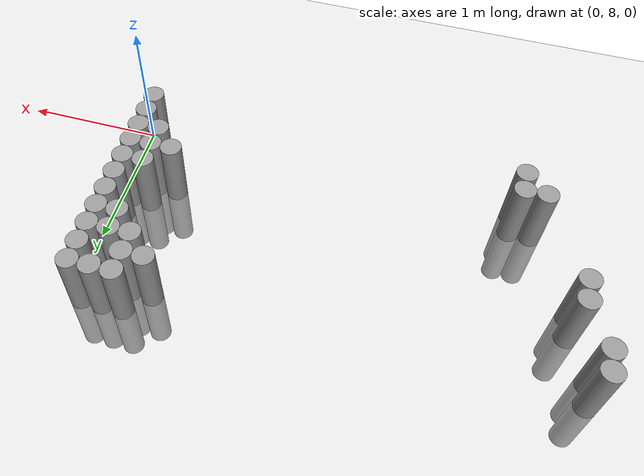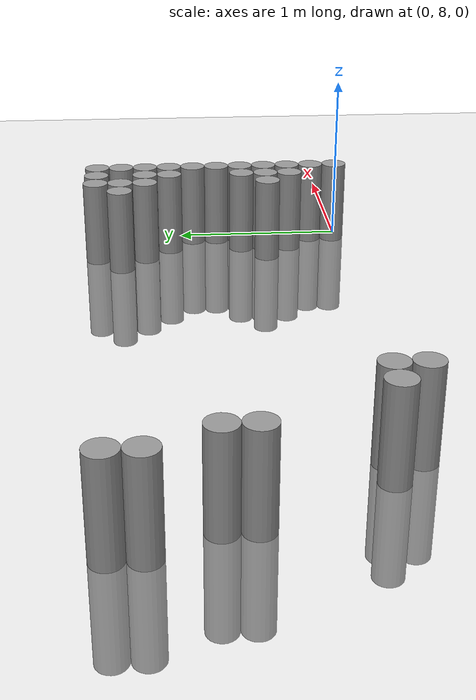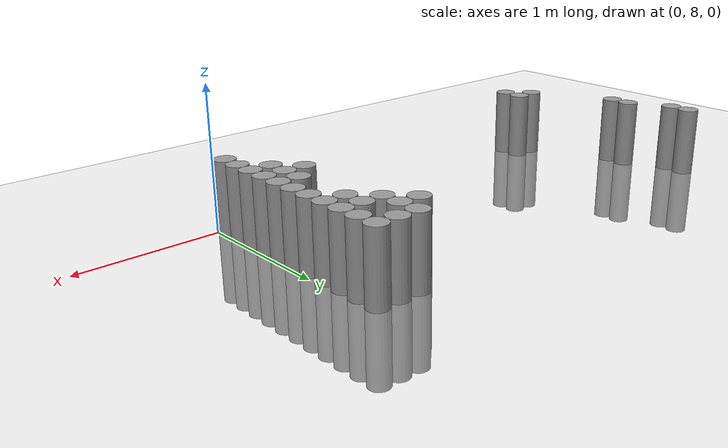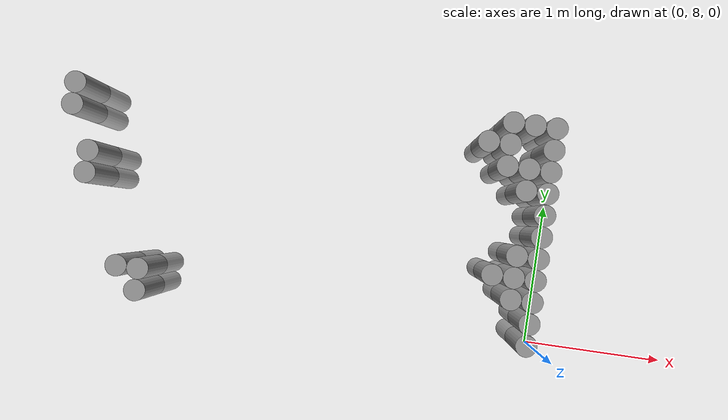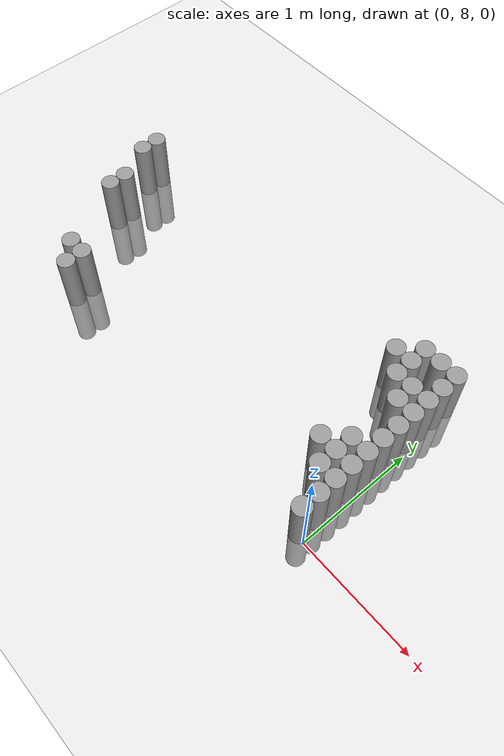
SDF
<sdf version="1.6">
 <world name="default">
  <model name="ground_plane">
   <static>1</static>
   <static>1</static>
   <link name="link">
    <collision name="collision">
     <geometry><plane><normal>0 0 1</normal><size>100 100</size></plane></geometry>
     <surface><friction><ode><mu>100</mu><mu2>50</mu2></ode></friction></surface>
    </collision>
    <visual name="visual">
     <cast_shadows>0</cast_shadows>
     <geometry><plane><normal>0 0 1</normal><size>100 100</size></plane></geometry>
     <material>
      <script><uri>file://media/materials/scripts/gazebo.material</uri><name>Gazebo/Grey</name></script>
     </material>
    </visual>
   </link>
  </model>
  <model name="unit_cylinder_164">
   <static>1</static>
   <pose>-3.375000 9.225000 0.000000 0.000000 0.000000 0.000000</pose>
   <link name="link">
    <inertial>
     <mass>1</mass>
     <inertia><ixx>0.145833</ixx><ixy>0</ixy><ixz>0</ixz><iyy>0.145833</iyy><iyz>0</iyz><izz>0.125</izz></inertia>
    </inertial>
    <collision name="collision">
     <geometry><cylinder><radius>0.075000</radius><length>1</length></cylinder></geometry>
    </collision>
    <visual name="visual">
     <geometry><cylinder><radius>0.075000</radius><length>1</length></cylinder></geometry>
     <material>
      <script><name>Gazebo/Grey</name><uri>file://media/materials/scripts/gazebo.material</uri></script>
     </material>
    </visual>
   </link>
  </model>
  <model name="unit_cylinder_165">
   <static>1</static>
   <pose>-3.375000 9.375000 0.000000 0.000000 0.000000 0.000000</pose>
   <link name="link">
    <inertial>
     <mass>1</mass>
     <inertia><ixx>0.145833</ixx><ixy>0</ixy><ixz>0</ixz><iyy>0.145833</iyy><iyz>0</iyz><izz>0.125</izz></inertia>
    </inertial>
    <collision name="collision">
     <geometry><cylinder><radius>0.075000</radius><length>1</length></cylinder></geometry>
    </collision>
    <visual name="visual">
     <geometry><cylinder><radius>0.075000</radius><length>1</length></cylinder></geometry>
     <material>
      <script><name>Gazebo/Grey</name><uri>file://media/materials/scripts/gazebo.material</uri></script>
     </material>
    </visual>
   </link>
  </model>
  <model name="unit_cylinder_168">
   <static>1</static>
   <pose>-3.225000 8.775000 0.000000 0.000000 0.000000 0.000000</pose>
   <link name="link">
    <inertial>
     <mass>1</mass>
     <inertia><ixx>0.145833</ixx><ixy>0</ixy><ixz>0</ixz><iyy>0.145833</iyy><iyz>0</iyz><izz>0.125</izz></inertia>
    </inertial>
    <collision name="collision">
     <geometry><cylinder><radius>0.075000</radius><length>1</length></cylinder></geometry>
    </collision>
    <visual name="visual">
     <geometry><cylinder><radius>0.075000</radius><length>1</length></cylinder></geometry>
     <material>
      <script><name>Gazebo/Grey</name><uri>file://media/materials/scripts/gazebo.material</uri></script>
     </material>
    </visual>
   </link>
  </model>
  <model name="unit_cylinder_169">
   <static>1</static>
   <pose>-3.225000 8.925000 0.000000 0.000000 0.000000 0.000000</pose>
   <link name="link">
    <inertial>
     <mass>1</mass>
     <inertia><ixx>0.145833</ixx><ixy>0</ixy><ixz>0</ixz><iyy>0.145833</iyy><iyz>0</iyz><izz>0.125</izz></inertia>
    </inertial>
    <collision name="collision">
     <geometry><cylinder><radius>0.075000</radius><length>1</length></cylinder></geometry>
    </collision>
    <visual name="visual">
     <geometry><cylinder><radius>0.075000</radius><length>1</length></cylinder></geometry>
     <material>
      <script><name>Gazebo/Grey</name><uri>file://media/materials/scripts/gazebo.material</uri></script>
     </material>
    </visual>
   </link>
  </model>
  <model name="unit_cylinder_171">
   <static>1</static>
   <pose>-2.925000 8.175000 0.000000 0.000000 0.000000 0.000000</pose>
   <link name="link">
    <inertial>
     <mass>1</mass>
     <inertia><ixx>0.145833</ixx><ixy>0</ixy><ixz>0</ixz><iyy>0.145833</iyy><iyz>0</iyz><izz>0.125</izz></inertia>
    </inertial>
    <collision name="collision">
     <geometry><cylinder><radius>0.075000</radius><length>1</length></cylinder></geometry>
    </collision>
    <visual name="visual">
     <geometry><cylinder><radius>0.075000</radius><length>1</length></cylinder></geometry>
     <material>
      <script><name>Gazebo/Grey</name><uri>file://media/materials/scripts/gazebo.material</uri></script>
     </material>
    </visual>
   </link>
  </model>
  <model name="unit_cylinder_172">
   <static>1</static>
   <pose>-2.775000 8.025000 0.000000 0.000000 0.000000 0.000000</pose>
   <link name="link">
    <inertial>
     <mass>1</mass>
     <inertia><ixx>0.145833</ixx><ixy>0</ixy><ixz>0</ixz><iyy>0.145833</iyy><iyz>0</iyz><izz>0.125</izz></inertia>
    </inertial>
    <collision name="collision">
     <geometry><cylinder><radius>0.075000</radius><length>1</length></cylinder></geometry>
    </collision>
    <visual name="visual">
     <geometry><cylinder><radius>0.075000</radius><length>1</length></cylinder></geometry>
     <material>
      <script><name>Gazebo/Grey</name><uri>file://media/materials/scripts/gazebo.material</uri></script>
     </material>
    </visual>
   </link>
  </model>
  <model name="unit_cylinder_173">
   <static>1</static>
   <pose>-2.775000 8.175000 0.000000 0.000000 0.000000 0.000000</pose>
   <link name="link">
    <inertial>
     <mass>1</mass>
     <inertia><ixx>0.145833</ixx><ixy>0</ixy><ixz>0</ixz><iyy>0.145833</iyy><iyz>0</iyz><izz>0.125</izz></inertia>
    </inertial>
    <collision name="collision">
     <geometry><cylinder><radius>0.075000</radius><length>1</length></cylinder></geometry>
    </collision>
    <visual name="visual">
     <geometry><cylinder><radius>0.075000</radius><length>1</length></cylinder></geometry>
     <material>
      <script><name>Gazebo/Grey</name><uri>file://media/materials/scripts/gazebo.material</uri></script>
     </material>
    </visual>
   </link>
  </model>
  <model name="unit_cylinder_184">
   <static>1</static>
   <pose>-0.525000 9.375000 0.000000 0.000000 0.000000 0.000000</pose>
   <link name="link">
    <inertial>
     <mass>1</mass>
     <inertia><ixx>0.145833</ixx><ixy>0</ixy><ixz>0</ixz><iyy>0.145833</iyy><iyz>0</iyz><izz>0.125</izz></inertia>
    </inertial>
    <collision name="collision">
     <geometry><cylinder><radius>0.075000</radius><length>1</length></cylinder></geometry>
    </collision>
    <visual name="visual">
     <geometry><cylinder><radius>0.075000</radius><length>1</length></cylinder></geometry>
     <material>
      <script><name>Gazebo/Grey</name><uri>file://media/materials/scripts/gazebo.material</uri></script>
     </material>
    </visual>
   </link>
  </model>
  <model name="unit_cylinder_185">
   <static>1</static>
   <pose>-0.375000 8.475000 0.000000 0.000000 0.000000 0.000000</pose>
   <link name="link">
    <inertial>
     <mass>1</mass>
     <inertia><ixx>0.145833</ixx><ixy>0</ixy><ixz>0</ixz><iyy>0.145833</iyy><iyz>0</iyz><izz>0.125</izz></inertia>
    </inertial>
    <collision name="collision">
     <geometry><cylinder><radius>0.075000</radius><length>1</length></cylinder></geometry>
    </collision>
    <visual name="visual">
     <geometry><cylinder><radius>0.075000</radius><length>1</length></cylinder></geometry>
     <material>
      <script><name>Gazebo/Grey</name><uri>file://media/materials/scripts/gazebo.material</uri></script>
     </material>
    </visual>
   </link>
  </model>
  <model name="unit_cylinder_186">
   <static>1</static>
   <pose>-0.375000 9.225000 0.000000 0.000000 0.000000 0.000000</pose>
   <link name="link">
    <inertial>
     <mass>1</mass>
     <inertia><ixx>0.145833</ixx><ixy>0</ixy><ixz>0</ixz><iyy>0.145833</iyy><iyz>0</iyz><izz>0.125</izz></inertia>
    </inertial>
    <collision name="collision">
     <geometry><cylinder><radius>0.075000</radius><length>1</length></cylinder></geometry>
    </collision>
    <visual name="visual">
     <geometry><cylinder><radius>0.075000</radius><length>1</length></cylinder></geometry>
     <material>
      <script><name>Gazebo/Grey</name><uri>file://media/materials/scripts/gazebo.material</uri></script>
     </material>
    </visual>
   </link>
  </model>
  <model name="unit_cylinder_187">
   <static>1</static>
   <pose>-0.375000 9.375000 0.000000 0.000000 0.000000 0.000000</pose>
   <link name="link">
    <inertial>
     <mass>1</mass>
     <inertia><ixx>0.145833</ixx><ixy>0</ixy><ixz>0</ixz><iyy>0.145833</iyy><iyz>0</iyz><izz>0.125</izz></inertia>
    </inertial>
    <collision name="collision">
     <geometry><cylinder><radius>0.075000</radius><length>1</length></cylinder></geometry>
    </collision>
    <visual name="visual">
     <geometry><cylinder><radius>0.075000</radius><length>1</length></cylinder></geometry>
     <material>
      <script><name>Gazebo/Grey</name><uri>file://media/materials/scripts/gazebo.material</uri></script>
     </material>
    </visual>
   </link>
  </model>
  <model name="unit_cylinder_188">
   <static>1</static>
   <pose>-0.375000 9.525000 0.000000 0.000000 0.000000 0.000000</pose>
   <link name="link">
    <inertial>
     <mass>1</mass>
     <inertia><ixx>0.145833</ixx><ixy>0</ixy><ixz>0</ixz><iyy>0.145833</iyy><iyz>0</iyz><izz>0.125</izz></inertia>
    </inertial>
    <collision name="collision">
     <geometry><cylinder><radius>0.075000</radius><length>1</length></cylinder></geometry>
    </collision>
    <visual name="visual">
     <geometry><cylinder><radius>0.075000</radius><length>1</length></cylinder></geometry>
     <material>
      <script><name>Gazebo/Grey</name><uri>file://media/materials/scripts/gazebo.material</uri></script>
     </material>
    </visual>
   </link>
  </model>
  <model name="unit_cylinder_190">
   <static>1</static>
   <pose>-0.225000 8.325000 0.000000 0.000000 0.000000 0.000000</pose>
   <link name="link">
    <inertial>
     <mass>1</mass>
     <inertia><ixx>0.145833</ixx><ixy>0</ixy><ixz>0</ixz><iyy>0.145833</iyy><iyz>0</iyz><izz>0.125</izz></inertia>
    </inertial>
    <collision name="collision">
     <geometry><cylinder><radius>0.075000</radius><length>1</length></cylinder></geometry>
    </collision>
    <visual name="visual">
     <geometry><cylinder><radius>0.075000</radius><length>1</length></cylinder></geometry>
     <material>
      <script><name>Gazebo/Grey</name><uri>file://media/materials/scripts/gazebo.material</uri></script>
     </material>
    </visual>
   </link>
  </model>
  <model name="unit_cylinder_191">
   <static>1</static>
   <pose>-0.225000 8.475000 0.000000 0.000000 0.000000 0.000000</pose>
   <link name="link">
    <inertial>
     <mass>1</mass>
     <inertia><ixx>0.145833</ixx><ixy>0</ixy><ixz>0</ixz><iyy>0.145833</iyy><iyz>0</iyz><izz>0.125</izz></inertia>
    </inertial>
    <collision name="collision">
     <geometry><cylinder><radius>0.075000</radius><length>1</length></cylinder></geometry>
    </collision>
    <visual name="visual">
     <geometry><cylinder><radius>0.075000</radius><length>1</length></cylinder></geometry>
     <material>
      <script><name>Gazebo/Grey</name><uri>file://media/materials/scripts/gazebo.material</uri></script>
     </material>
    </visual>
   </link>
  </model>
  <model name="unit_cylinder_192">
   <static>1</static>
   <pose>-0.225000 8.625000 0.000000 0.000000 0.000000 0.000000</pose>
   <link name="link">
    <inertial>
     <mass>1</mass>
     <inertia><ixx>0.145833</ixx><ixy>0</ixy><ixz>0</ixz><iyy>0.145833</iyy><iyz>0</iyz><izz>0.125</izz></inertia>
    </inertial>
    <collision name="collision">
     <geometry><cylinder><radius>0.075000</radius><length>1</length></cylinder></geometry>
    </collision>
    <visual name="visual">
     <geometry><cylinder><radius>0.075000</radius><length>1</length></cylinder></geometry>
     <material>
      <script><name>Gazebo/Grey</name><uri>file://media/materials/scripts/gazebo.material</uri></script>
     </material>
    </visual>
   </link>
  </model>
  <model name="unit_cylinder_193">
   <static>1</static>
   <pose>-0.225000 9.075000 0.000000 0.000000 0.000000 0.000000</pose>
   <link name="link">
    <inertial>
     <mass>1</mass>
     <inertia><ixx>0.145833</ixx><ixy>0</ixy><ixz>0</ixz><iyy>0.145833</iyy><iyz>0</iyz><izz>0.125</izz></inertia>
    </inertial>
    <collision name="collision">
     <geometry><cylinder><radius>0.075000</radius><length>1</length></cylinder></geometry>
    </collision>
    <visual name="visual">
     <geometry><cylinder><radius>0.075000</radius><length>1</length></cylinder></geometry>
     <material>
      <script><name>Gazebo/Grey</name><uri>file://media/materials/scripts/gazebo.material</uri></script>
     </material>
    </visual>
   </link>
  </model>
  <model name="unit_cylinder_194">
   <static>1</static>
   <pose>-0.225000 9.225000 0.000000 0.000000 0.000000 0.000000</pose>
   <link name="link">
    <inertial>
     <mass>1</mass>
     <inertia><ixx>0.145833</ixx><ixy>0</ixy><ixz>0</ixz><iyy>0.145833</iyy><iyz>0</iyz><izz>0.125</izz></inertia>
    </inertial>
    <collision name="collision">
     <geometry><cylinder><radius>0.075000</radius><length>1</length></cylinder></geometry>
    </collision>
    <visual name="visual">
     <geometry><cylinder><radius>0.075000</radius><length>1</length></cylinder></geometry>
     <material>
      <script><name>Gazebo/Grey</name><uri>file://media/materials/scripts/gazebo.material</uri></script>
     </material>
    </visual>
   </link>
  </model>
  <model name="unit_cylinder_195">
   <static>1</static>
   <pose>-0.225000 9.525000 0.000000 0.000000 0.000000 0.000000</pose>
   <link name="link">
    <inertial>
     <mass>1</mass>
     <inertia><ixx>0.145833</ixx><ixy>0</ixy><ixz>0</ixz><iyy>0.145833</iyy><iyz>0</iyz><izz>0.125</izz></inertia>
    </inertial>
    <collision name="collision">
     <geometry><cylinder><radius>0.075000</radius><length>1</length></cylinder></geometry>
    </collision>
    <visual name="visual">
     <geometry><cylinder><radius>0.075000</radius><length>1</length></cylinder></geometry>
     <material>
      <script><name>Gazebo/Grey</name><uri>file://media/materials/scripts/gazebo.material</uri></script>
     </material>
    </visual>
   </link>
  </model>
  <model name="unit_cylinder_215">
   <static>1</static>
   <pose>-0.075000 8.025000 0.000000 0.000000 0.000000 0.000000</pose>
   <link name="link">
    <inertial>
     <mass>1</mass>
     <inertia><ixx>0.145833</ixx><ixy>0</ixy><ixz>0</ixz><iyy>0.145833</iyy><iyz>0</iyz><izz>0.125</izz></inertia>
    </inertial>
    <collision name="collision">
     <geometry><cylinder><radius>0.075000</radius><length>1</length></cylinder></geometry>
    </collision>
    <visual name="visual">
     <geometry><cylinder><radius>0.075000</radius><length>1</length></cylinder></geometry>
     <material>
      <script><name>Gazebo/Grey</name><uri>file://media/materials/scripts/gazebo.material</uri></script>
     </material>
    </visual>
   </link>
  </model>
  <model name="unit_cylinder_216">
   <static>1</static>
   <pose>-0.075000 8.175000 0.000000 0.000000 0.000000 0.000000</pose>
   <link name="link">
    <inertial>
     <mass>1</mass>
     <inertia><ixx>0.145833</ixx><ixy>0</ixy><ixz>0</ixz><iyy>0.145833</iyy><iyz>0</iyz><izz>0.125</izz></inertia>
    </inertial>
    <collision name="collision">
     <geometry><cylinder><radius>0.075000</radius><length>1</length></cylinder></geometry>
    </collision>
    <visual name="visual">
     <geometry><cylinder><radius>0.075000</radius><length>1</length></cylinder></geometry>
     <material>
      <script><name>Gazebo/Grey</name><uri>file://media/materials/scripts/gazebo.material</uri></script>
     </material>
    </visual>
   </link>
  </model>
  <model name="unit_cylinder_217">
   <static>1</static>
   <pose>-0.075000 8.325000 0.000000 0.000000 0.000000 0.000000</pose>
   <link name="link">
    <inertial>
     <mass>1</mass>
     <inertia><ixx>0.145833</ixx><ixy>0</ixy><ixz>0</ixz><iyy>0.145833</iyy><iyz>0</iyz><izz>0.125</izz></inertia>
    </inertial>
    <collision name="collision">
     <geometry><cylinder><radius>0.075000</radius><length>1</length></cylinder></geometry>
    </collision>
    <visual name="visual">
     <geometry><cylinder><radius>0.075000</radius><length>1</length></cylinder></geometry>
     <material>
      <script><name>Gazebo/Grey</name><uri>file://media/materials/scripts/gazebo.material</uri></script>
     </material>
    </visual>
   </link>
  </model>
  <model name="unit_cylinder_218">
   <static>1</static>
   <pose>-0.075000 8.475000 0.000000 0.000000 0.000000 0.000000</pose>
   <link name="link">
    <inertial>
     <mass>1</mass>
     <inertia><ixx>0.145833</ixx><ixy>0</ixy><ixz>0</ixz><iyy>0.145833</iyy><iyz>0</iyz><izz>0.125</izz></inertia>
    </inertial>
    <collision name="collision">
     <geometry><cylinder><radius>0.075000</radius><length>1</length></cylinder></geometry>
    </collision>
    <visual name="visual">
     <geometry><cylinder><radius>0.075000</radius><length>1</length></cylinder></geometry>
     <material>
      <script><name>Gazebo/Grey</name><uri>file://media/materials/scripts/gazebo.material</uri></script>
     </material>
    </visual>
   </link>
  </model>
  <model name="unit_cylinder_219">
   <static>1</static>
   <pose>-0.075000 8.625000 0.000000 0.000000 0.000000 0.000000</pose>
   <link name="link">
    <inertial>
     <mass>1</mass>
     <inertia><ixx>0.145833</ixx><ixy>0</ixy><ixz>0</ixz><iyy>0.145833</iyy><iyz>0</iyz><izz>0.125</izz></inertia>
    </inertial>
    <collision name="collision">
     <geometry><cylinder><radius>0.075000</radius><length>1</length></cylinder></geometry>
    </collision>
    <visual name="visual">
     <geometry><cylinder><radius>0.075000</radius><length>1</length></cylinder></geometry>
     <material>
      <script><name>Gazebo/Grey</name><uri>file://media/materials/scripts/gazebo.material</uri></script>
     </material>
    </visual>
   </link>
  </model>
  <model name="unit_cylinder_220">
   <static>1</static>
   <pose>-0.075000 8.775000 0.000000 0.000000 0.000000 0.000000</pose>
   <link name="link">
    <inertial>
     <mass>1</mass>
     <inertia><ixx>0.145833</ixx><ixy>0</ixy><ixz>0</ixz><iyy>0.145833</iyy><iyz>0</iyz><izz>0.125</izz></inertia>
    </inertial>
    <collision name="collision">
     <geometry><cylinder><radius>0.075000</radius><length>1</length></cylinder></geometry>
    </collision>
    <visual name="visual">
     <geometry><cylinder><radius>0.075000</radius><length>1</length></cylinder></geometry>
     <material>
      <script><name>Gazebo/Grey</name><uri>file://media/materials/scripts/gazebo.material</uri></script>
     </material>
    </visual>
   </link>
  </model>
  <model name="unit_cylinder_221">
   <static>1</static>
   <pose>-0.075000 8.925000 0.000000 0.000000 0.000000 0.000000</pose>
   <link name="link">
    <inertial>
     <mass>1</mass>
     <inertia><ixx>0.145833</ixx><ixy>0</ixy><ixz>0</ixz><iyy>0.145833</iyy><iyz>0</iyz><izz>0.125</izz></inertia>
    </inertial>
    <collision name="collision">
     <geometry><cylinder><radius>0.075000</radius><length>1</length></cylinder></geometry>
    </collision>
    <visual name="visual">
     <geometry><cylinder><radius>0.075000</radius><length>1</length></cylinder></geometry>
     <material>
      <script><name>Gazebo/Grey</name><uri>file://media/materials/scripts/gazebo.material</uri></script>
     </material>
    </visual>
   </link>
  </model>
  <model name="unit_cylinder_222">
   <static>1</static>
   <pose>-0.075000 9.075000 0.000000 0.000000 0.000000 0.000000</pose>
   <link name="link">
    <inertial>
     <mass>1</mass>
     <inertia><ixx>0.145833</ixx><ixy>0</ixy><ixz>0</ixz><iyy>0.145833</iyy><iyz>0</iyz><izz>0.125</izz></inertia>
    </inertial>
    <collision name="collision">
     <geometry><cylinder><radius>0.075000</radius><length>1</length></cylinder></geometry>
    </collision>
    <visual name="visual">
     <geometry><cylinder><radius>0.075000</radius><length>1</length></cylinder></geometry>
     <material>
      <script><name>Gazebo/Grey</name><uri>file://media/materials/scripts/gazebo.material</uri></script>
     </material>
    </visual>
   </link>
  </model>
  <model name="unit_cylinder_223">
   <static>1</static>
   <pose>-0.075000 9.225000 0.000000 0.000000 0.000000 0.000000</pose>
   <link name="link">
    <inertial>
     <mass>1</mass>
     <inertia><ixx>0.145833</ixx><ixy>0</ixy><ixz>0</ixz><iyy>0.145833</iyy><iyz>0</iyz><izz>0.125</izz></inertia>
    </inertial>
    <collision name="collision">
     <geometry><cylinder><radius>0.075000</radius><length>1</length></cylinder></geometry>
    </collision>
    <visual name="visual">
     <geometry><cylinder><radius>0.075000</radius><length>1</length></cylinder></geometry>
     <material>
      <script><name>Gazebo/Grey</name><uri>file://media/materials/scripts/gazebo.material</uri></script>
     </material>
    </visual>
   </link>
  </model>
  <model name="unit_cylinder_224">
   <static>1</static>
   <pose>-0.075000 9.375000 0.000000 0.000000 0.000000 0.000000</pose>
   <link name="link">
    <inertial>
     <mass>1</mass>
     <inertia><ixx>0.145833</ixx><ixy>0</ixy><ixz>0</ixz><iyy>0.145833</iyy><iyz>0</iyz><izz>0.125</izz></inertia>
    </inertial>
    <collision name="collision">
     <geometry><cylinder><radius>0.075000</radius><length>1</length></cylinder></geometry>
    </collision>
    <visual name="visual">
     <geometry><cylinder><radius>0.075000</radius><length>1</length></cylinder></geometry>
     <material>
      <script><name>Gazebo/Grey</name><uri>file://media/materials/scripts/gazebo.material</uri></script>
     </material>
    </visual>
   </link>
  </model>
  <model name="unit_cylinder_225">
   <static>1</static>
   <pose>-0.075000 9.525000 0.000000 0.000000 0.000000 0.000000</pose>
   <link name="link">
    <inertial>
     <mass>1</mass>
     <inertia><ixx>0.145833</ixx><ixy>0</ixy><ixz>0</ixz><iyy>0.145833</iyy><iyz>0</iyz><izz>0.125</izz></inertia>
    </inertial>
    <collision name="collision">
     <geometry><cylinder><radius>0.075000</radius><length>1</length></cylinder></geometry>
    </collision>
    <visual name="visual">
     <geometry><cylinder><radius>0.075000</radius><length>1</length></cylinder></geometry>
     <material>
      <script><name>Gazebo/Grey</name><uri>file://media/materials/scripts/gazebo.material</uri></script>
     </material>
    </visual>
   </link>
  </model>
 </world>
</sdf>
